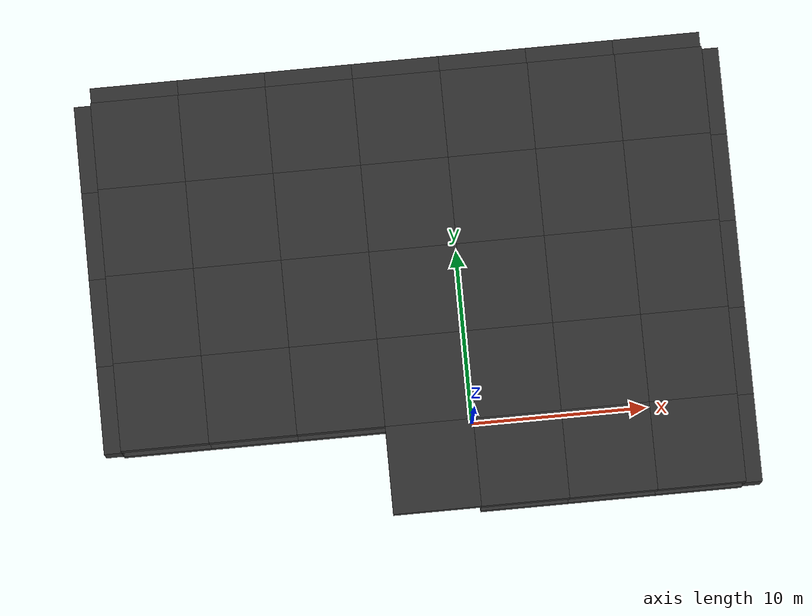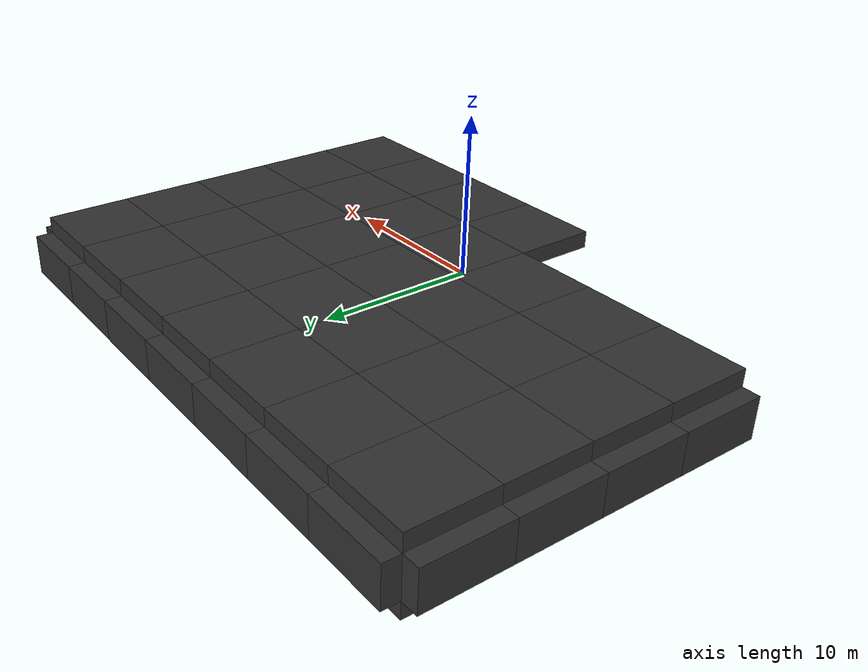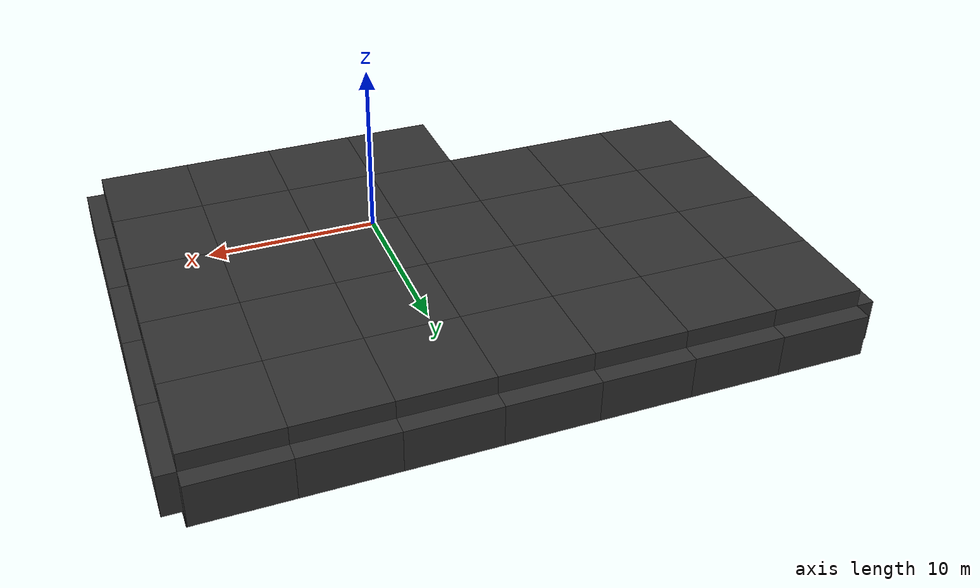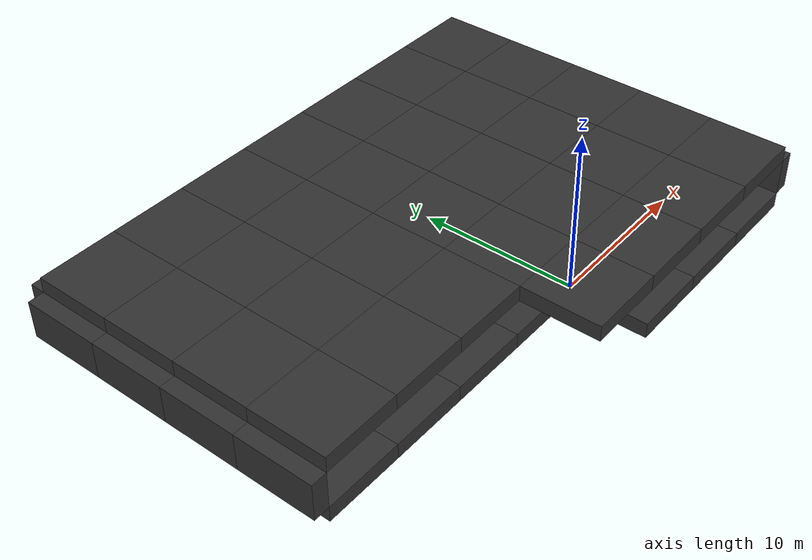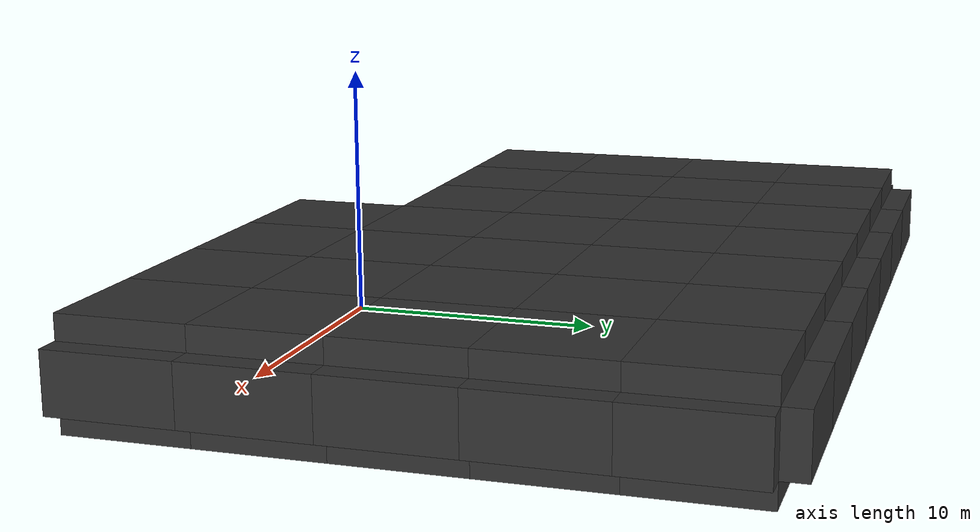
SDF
<sdf version="1.7">
 <world name="RG1">
  <model name="floor_6">
   <static>true</static>
   <pose>-17.5 2.5 -0.5 0.0 0.0 0.0</pose>
   <link name="floor_6-base-link">
    <visual name="floor_6-visual">
     <geometry><box><size>5 5 1.0</size></box></geometry>
     <material><diffuse>0.2 0.2 0.2 1</diffuse><specular>0.1 0.1 0.1 1</specular></material>
    </visual>
    <collision name="floor_6-collision"><geometry><box><size>5 5 1.0</size></box></geometry></collision>
   </link>
  </model>
  <model name="ceiling_6">
   <static>true</static>
   <pose>-17.5 2.5 2.9 0.0 0.0 0.0</pose>
   <link name="ceiling_6-base-link">
    <visual name="ceiling_6-visual">
     <geometry><box><size>5 5 1.0</size></box></geometry>
     <material><diffuse>0.2 0.2 0.2 1</diffuse><specular>0.1 0.1 0.1 1</specular></material>
    </visual>
    <collision name="ceiling_6-collision"><geometry><box><size>5 5 1.0</size></box></geometry></collision>
    <light type="point" name="ceiling_6-light">
     <pose>0 0 -1 0 0 0</pose>
     <cast_shadows>false</cast_shadows>
     <diffuse>0.8 0.8 0.8 1</diffuse>
     <attenuation>
      <range>10</range>
      <constant>0.8</constant>
      <linear>0.05</linear>
      <quadratic>0.01</quadratic>
     </attenuation>
    </light>
   </link>
  </model>
  <model name="wall_7">
   <static>true</static>
   <pose>-20.5 2.5 1.2 0.0 0.0 1.570796326795</pose>
   <link name="wall_7-base-link">
    <visual name="wall_7-visual">
     <geometry><box><size>5 1 2.4</size></box></geometry>
     <material><diffuse>0.2 0.2 0.2 1</diffuse><specular>0.1 0.1 0.1 1</specular></material>
    </visual>
    <collision name="wall_7-collision"><geometry><box><size>5 1 2.4</size></box></geometry></collision>
   </link>
  </model>
  <model name="floor_7">
   <static>true</static>
   <pose>-17.5 7.5 -0.5 0.0 0.0 0.0</pose>
   <link name="floor_7-base-link">
    <visual name="floor_7-visual">
     <geometry><box><size>5 5 1.0</size></box></geometry>
     <material><diffuse>0.2 0.2 0.2 1</diffuse><specular>0.1 0.1 0.1 1</specular></material>
    </visual>
    <collision name="floor_7-collision"><geometry><box><size>5 5 1.0</size></box></geometry></collision>
   </link>
  </model>
  <model name="ceiling_7">
   <static>true</static>
   <pose>-17.5 7.5 2.9 0.0 0.0 0.0</pose>
   <link name="ceiling_7-base-link">
    <visual name="ceiling_7-visual">
     <geometry><box><size>5 5 1.0</size></box></geometry>
     <material><diffuse>0.2 0.2 0.2 1</diffuse><specular>0.1 0.1 0.1 1</specular></material>
    </visual>
    <collision name="ceiling_7-collision"><geometry><box><size>5 5 1.0</size></box></geometry></collision>
    <light type="point" name="ceiling_7-light">
     <pose>0 0 -1 0 0 0</pose>
     <cast_shadows>false</cast_shadows>
     <diffuse>0.8 0.8 0.8 1</diffuse>
     <attenuation>
      <range>10</range>
      <constant>0.8</constant>
      <linear>0.05</linear>
      <quadratic>0.01</quadratic>
     </attenuation>
    </light>
   </link>
  </model>
  <model name="wall_8">
   <static>true</static>
   <pose>-20.5 7.5 1.2 0.0 0.0 1.570796326795</pose>
   <link name="wall_8-base-link">
    <visual name="wall_8-visual">
     <geometry><box><size>5 1 2.4</size></box></geometry>
     <material><diffuse>0.2 0.2 0.2 1</diffuse><specular>0.1 0.1 0.1 1</specular></material>
    </visual>
    <collision name="wall_8-collision"><geometry><box><size>5 1 2.4</size></box></geometry></collision>
   </link>
  </model>
  <model name="floor_8">
   <static>true</static>
   <pose>-17.5 12.5 -0.5 0.0 0.0 0.0</pose>
   <link name="floor_8-base-link">
    <visual name="floor_8-visual">
     <geometry><box><size>5 5 1.0</size></box></geometry>
     <material><diffuse>0.2 0.2 0.2 1</diffuse><specular>0.1 0.1 0.1 1</specular></material>
    </visual>
    <collision name="floor_8-collision"><geometry><box><size>5 5 1.0</size></box></geometry></collision>
   </link>
  </model>
  <model name="ceiling_8">
   <static>true</static>
   <pose>-17.5 12.5 2.9 0.0 0.0 0.0</pose>
   <link name="ceiling_8-base-link">
    <visual name="ceiling_8-visual">
     <geometry><box><size>5 5 1.0</size></box></geometry>
     <material><diffuse>0.2 0.2 0.2 1</diffuse><specular>0.1 0.1 0.1 1</specular></material>
    </visual>
    <collision name="ceiling_8-collision"><geometry><box><size>5 5 1.0</size></box></geometry></collision>
    <light type="point" name="ceiling_8-light">
     <pose>0 0 -1 0 0 0</pose>
     <cast_shadows>false</cast_shadows>
     <diffuse>0.8 0.8 0.8 1</diffuse>
     <attenuation>
      <range>10</range>
      <constant>0.8</constant>
      <linear>0.05</linear>
      <quadratic>0.01</quadratic>
     </attenuation>
    </light>
   </link>
  </model>
  <model name="wall_9">
   <static>true</static>
   <pose>-20.5 12.5 1.2 0.0 0.0 1.570796326795</pose>
   <link name="wall_9-base-link">
    <visual name="wall_9-visual">
     <geometry><box><size>5 1 2.4</size></box></geometry>
     <material><diffuse>0.2 0.2 0.2 1</diffuse><specular>0.1 0.1 0.1 1</specular></material>
    </visual>
    <collision name="wall_9-collision"><geometry><box><size>5 1 2.4</size></box></geometry></collision>
   </link>
  </model>
  <model name="floor_9">
   <static>true</static>
   <pose>-17.5 17.5 -0.5 0.0 0.0 0.0</pose>
   <link name="floor_9-base-link">
    <visual name="floor_9-visual">
     <geometry><box><size>5 5 1.0</size></box></geometry>
     <material><diffuse>0.2 0.2 0.2 1</diffuse><specular>0.1 0.1 0.1 1</specular></material>
    </visual>
    <collision name="floor_9-collision"><geometry><box><size>5 5 1.0</size></box></geometry></collision>
   </link>
  </model>
  <model name="ceiling_9">
   <static>true</static>
   <pose>-17.5 17.5 2.9 0.0 0.0 0.0</pose>
   <link name="ceiling_9-base-link">
    <visual name="ceiling_9-visual">
     <geometry><box><size>5 5 1.0</size></box></geometry>
     <material><diffuse>0.2 0.2 0.2 1</diffuse><specular>0.1 0.1 0.1 1</specular></material>
    </visual>
    <collision name="ceiling_9-collision"><geometry><box><size>5 5 1.0</size></box></geometry></collision>
    <light type="point" name="ceiling_9-light">
     <pose>0 0 -1 0 0 0</pose>
     <cast_shadows>false</cast_shadows>
     <diffuse>0.8 0.8 0.8 1</diffuse>
     <attenuation>
      <range>10</range>
      <constant>0.8</constant>
      <linear>0.05</linear>
      <quadratic>0.01</quadratic>
     </attenuation>
    </light>
   </link>
  </model>
  <model name="wall_10">
   <static>true</static>
   <pose>-20.5 17.5 1.2 0.0 0.0 1.570796326795</pose>
   <link name="wall_10-base-link">
    <visual name="wall_10-visual">
     <geometry><box><size>5 1 2.4</size></box></geometry>
     <material><diffuse>0.2 0.2 0.2 1</diffuse><specular>0.1 0.1 0.1 1</specular></material>
    </visual>
    <collision name="wall_10-collision"><geometry><box><size>5 1 2.4</size></box></geometry></collision>
   </link>
  </model>
  <model name="wall_11">
   <static>true</static>
   <pose>-17.5 20.5 1.2 0.0 0.0 0.0</pose>
   <link name="wall_11-base-link">
    <visual name="wall_11-visual">
     <geometry><box><size>5 1 2.4</size></box></geometry>
     <material><diffuse>0.2 0.2 0.2 1</diffuse><specular>0.1 0.1 0.1 1</specular></material>
    </visual>
    <collision name="wall_11-collision"><geometry><box><size>5 1 2.4</size></box></geometry></collision>
   </link>
  </model>
  <model name="floor_15">
   <static>true</static>
   <pose>-12.5 2.5 -0.5 0.0 0.0 0.0</pose>
   <link name="floor_15-base-link">
    <visual name="floor_15-visual">
     <geometry><box><size>5 5 1.0</size></box></geometry>
     <material><diffuse>0.2 0.2 0.2 1</diffuse><specular>0.1 0.1 0.1 1</specular></material>
    </visual>
    <collision name="floor_15-collision"><geometry><box><size>5 5 1.0</size></box></geometry></collision>
   </link>
  </model>
  <model name="ceiling_15">
   <static>true</static>
   <pose>-12.5 2.5 2.9 0.0 0.0 0.0</pose>
   <link name="ceiling_15-base-link">
    <visual name="ceiling_15-visual">
     <geometry><box><size>5 5 1.0</size></box></geometry>
     <material><diffuse>0.2 0.2 0.2 1</diffuse><specular>0.1 0.1 0.1 1</specular></material>
    </visual>
    <collision name="ceiling_15-collision"><geometry><box><size>5 5 1.0</size></box></geometry></collision>
    <light type="point" name="ceiling_15-light">
     <pose>0 0 -1 0 0 0</pose>
     <cast_shadows>false</cast_shadows>
     <diffuse>0.8 0.8 0.8 1</diffuse>
     <attenuation>
      <range>10</range>
      <constant>0.8</constant>
      <linear>0.05</linear>
      <quadratic>0.01</quadratic>
     </attenuation>
    </light>
   </link>
  </model>
  <model name="floor_16">
   <static>true</static>
   <pose>-12.5 7.5 -0.5 0.0 0.0 0.0</pose>
   <link name="floor_16-base-link">
    <visual name="floor_16-visual">
     <geometry><box><size>5 5 1.0</size></box></geometry>
     <material><diffuse>0.2 0.2 0.2 1</diffuse><specular>0.1 0.1 0.1 1</specular></material>
    </visual>
    <collision name="floor_16-collision"><geometry><box><size>5 5 1.0</size></box></geometry></collision>
   </link>
  </model>
  <model name="ceiling_16">
   <static>true</static>
   <pose>-12.5 7.5 2.9 0.0 0.0 0.0</pose>
   <link name="ceiling_16-base-link">
    <visual name="ceiling_16-visual">
     <geometry><box><size>5 5 1.0</size></box></geometry>
     <material><diffuse>0.2 0.2 0.2 1</diffuse><specular>0.1 0.1 0.1 1</specular></material>
    </visual>
    <collision name="ceiling_16-collision"><geometry><box><size>5 5 1.0</size></box></geometry></collision>
    <light type="point" name="ceiling_16-light">
     <pose>0 0 -1 0 0 0</pose>
     <cast_shadows>false</cast_shadows>
     <diffuse>0.8 0.8 0.8 1</diffuse>
     <attenuation>
      <range>10</range>
      <constant>0.8</constant>
      <linear>0.05</linear>
      <quadratic>0.01</quadratic>
     </attenuation>
    </light>
   </link>
  </model>
  <model name="floor_17">
   <static>true</static>
   <pose>-12.5 12.5 -0.5 0.0 0.0 0.0</pose>
   <link name="floor_17-base-link">
    <visual name="floor_17-visual">
     <geometry><box><size>5 5 1.0</size></box></geometry>
     <material><diffuse>0.2 0.2 0.2 1</diffuse><specular>0.1 0.1 0.1 1</specular></material>
    </visual>
    <collision name="floor_17-collision"><geometry><box><size>5 5 1.0</size></box></geometry></collision>
   </link>
  </model>
  <model name="ceiling_17">
   <static>true</static>
   <pose>-12.5 12.5 2.9 0.0 0.0 0.0</pose>
   <link name="ceiling_17-base-link">
    <visual name="ceiling_17-visual">
     <geometry><box><size>5 5 1.0</size></box></geometry>
     <material><diffuse>0.2 0.2 0.2 1</diffuse><specular>0.1 0.1 0.1 1</specular></material>
    </visual>
    <collision name="ceiling_17-collision"><geometry><box><size>5 5 1.0</size></box></geometry></collision>
    <light type="point" name="ceiling_17-light">
     <pose>0 0 -1 0 0 0</pose>
     <cast_shadows>false</cast_shadows>
     <diffuse>0.8 0.8 0.8 1</diffuse>
     <attenuation>
      <range>10</range>
      <constant>0.8</constant>
      <linear>0.05</linear>
      <quadratic>0.01</quadratic>
     </attenuation>
    </light>
   </link>
  </model>
  <model name="floor_18">
   <static>true</static>
   <pose>-12.5 17.5 -0.5 0.0 0.0 0.0</pose>
   <link name="floor_18-base-link">
    <visual name="floor_18-visual">
     <geometry><box><size>5 5 1.0</size></box></geometry>
     <material><diffuse>0.2 0.2 0.2 1</diffuse><specular>0.1 0.1 0.1 1</specular></material>
    </visual>
    <collision name="floor_18-collision"><geometry><box><size>5 5 1.0</size></box></geometry></collision>
   </link>
  </model>
  <model name="ceiling_18">
   <static>true</static>
   <pose>-12.5 17.5 2.9 0.0 0.0 0.0</pose>
   <link name="ceiling_18-base-link">
    <visual name="ceiling_18-visual">
     <geometry><box><size>5 5 1.0</size></box></geometry>
     <material><diffuse>0.2 0.2 0.2 1</diffuse><specular>0.1 0.1 0.1 1</specular></material>
    </visual>
    <collision name="ceiling_18-collision"><geometry><box><size>5 5 1.0</size></box></geometry></collision>
    <light type="point" name="ceiling_18-light">
     <pose>0 0 -1 0 0 0</pose>
     <cast_shadows>false</cast_shadows>
     <diffuse>0.8 0.8 0.8 1</diffuse>
     <attenuation>
      <range>10</range>
      <constant>0.8</constant>
      <linear>0.05</linear>
      <quadratic>0.01</quadratic>
     </attenuation>
    </light>
   </link>
  </model>
  <model name="wall_13">
   <static>true</static>
   <pose>-12.5 20.5 1.2 0.0 0.0 0.0</pose>
   <link name="wall_13-base-link">
    <visual name="wall_13-visual">
     <geometry><box><size>5 1 2.4</size></box></geometry>
     <material><diffuse>0.2 0.2 0.2 1</diffuse><specular>0.1 0.1 0.1 1</specular></material>
    </visual>
    <collision name="wall_13-collision"><geometry><box><size>5 1 2.4</size></box></geometry></collision>
   </link>
  </model>
  <model name="floor_24">
   <static>true</static>
   <pose>-7.5 2.5 -0.5 0.0 0.0 0.0</pose>
   <link name="floor_24-base-link">
    <visual name="floor_24-visual">
     <geometry><box><size>5 5 1.0</size></box></geometry>
     <material><diffuse>0.2 0.2 0.2 1</diffuse><specular>0.1 0.1 0.1 1</specular></material>
    </visual>
    <collision name="floor_24-collision"><geometry><box><size>5 5 1.0</size></box></geometry></collision>
   </link>
  </model>
  <model name="ceiling_24">
   <static>true</static>
   <pose>-7.5 2.5 2.9 0.0 0.0 0.0</pose>
   <link name="ceiling_24-base-link">
    <visual name="ceiling_24-visual">
     <geometry><box><size>5 5 1.0</size></box></geometry>
     <material><diffuse>0.2 0.2 0.2 1</diffuse><specular>0.1 0.1 0.1 1</specular></material>
    </visual>
    <collision name="ceiling_24-collision"><geometry><box><size>5 5 1.0</size></box></geometry></collision>
    <light type="point" name="ceiling_24-light">
     <pose>0 0 -1 0 0 0</pose>
     <cast_shadows>false</cast_shadows>
     <diffuse>0.8 0.8 0.8 1</diffuse>
     <attenuation>
      <range>10</range>
      <constant>0.8</constant>
      <linear>0.05</linear>
      <quadratic>0.01</quadratic>
     </attenuation>
    </light>
   </link>
  </model>
  <model name="floor_25">
   <static>true</static>
   <pose>-7.5 7.5 -0.5 0.0 0.0 0.0</pose>
   <link name="floor_25-base-link">
    <visual name="floor_25-visual">
     <geometry><box><size>5 5 1.0</size></box></geometry>
     <material><diffuse>0.2 0.2 0.2 1</diffuse><specular>0.1 0.1 0.1 1</specular></material>
    </visual>
    <collision name="floor_25-collision"><geometry><box><size>5 5 1.0</size></box></geometry></collision>
   </link>
  </model>
  <model name="ceiling_25">
   <static>true</static>
   <pose>-7.5 7.5 2.9 0.0 0.0 0.0</pose>
   <link name="ceiling_25-base-link">
    <visual name="ceiling_25-visual">
     <geometry><box><size>5 5 1.0</size></box></geometry>
     <material><diffuse>0.2 0.2 0.2 1</diffuse><specular>0.1 0.1 0.1 1</specular></material>
    </visual>
    <collision name="ceiling_25-collision"><geometry><box><size>5 5 1.0</size></box></geometry></collision>
    <light type="point" name="ceiling_25-light">
     <pose>0 0 -1 0 0 0</pose>
     <cast_shadows>false</cast_shadows>
     <diffuse>0.8 0.8 0.8 1</diffuse>
     <attenuation>
      <range>10</range>
      <constant>0.8</constant>
      <linear>0.05</linear>
      <quadratic>0.01</quadratic>
     </attenuation>
    </light>
   </link>
  </model>
  <model name="floor_26">
   <static>true</static>
   <pose>-7.5 12.5 -0.5 0.0 0.0 0.0</pose>
   <link name="floor_26-base-link">
    <visual name="floor_26-visual">
     <geometry><box><size>5 5 1.0</size></box></geometry>
     <material><diffuse>0.2 0.2 0.2 1</diffuse><specular>0.1 0.1 0.1 1</specular></material>
    </visual>
    <collision name="floor_26-collision"><geometry><box><size>5 5 1.0</size></box></geometry></collision>
   </link>
  </model>
  <model name="ceiling_26">
   <static>true</static>
   <pose>-7.5 12.5 2.9 0.0 0.0 0.0</pose>
   <link name="ceiling_26-base-link">
    <visual name="ceiling_26-visual">
     <geometry><box><size>5 5 1.0</size></box></geometry>
     <material><diffuse>0.2 0.2 0.2 1</diffuse><specular>0.1 0.1 0.1 1</specular></material>
    </visual>
    <collision name="ceiling_26-collision"><geometry><box><size>5 5 1.0</size></box></geometry></collision>
    <light type="point" name="ceiling_26-light">
     <pose>0 0 -1 0 0 0</pose>
     <cast_shadows>false</cast_shadows>
     <diffuse>0.8 0.8 0.8 1</diffuse>
     <attenuation>
      <range>10</range>
      <constant>0.8</constant>
      <linear>0.05</linear>
      <quadratic>0.01</quadratic>
     </attenuation>
    </light>
   </link>
  </model>
  <model name="floor_27">
   <static>true</static>
   <pose>-7.5 17.5 -0.5 0.0 0.0 0.0</pose>
   <link name="floor_27-base-link">
    <visual name="floor_27-visual">
     <geometry><box><size>5 5 1.0</size></box></geometry>
     <material><diffuse>0.2 0.2 0.2 1</diffuse><specular>0.1 0.1 0.1 1</specular></material>
    </visual>
    <collision name="floor_27-collision"><geometry><box><size>5 5 1.0</size></box></geometry></collision>
   </link>
  </model>
  <model name="ceiling_27">
   <static>true</static>
   <pose>-7.5 17.5 2.9 0.0 0.0 0.0</pose>
   <link name="ceiling_27-base-link">
    <visual name="ceiling_27-visual">
     <geometry><box><size>5 5 1.0</size></box></geometry>
     <material><diffuse>0.2 0.2 0.2 1</diffuse><specular>0.1 0.1 0.1 1</specular></material>
    </visual>
    <collision name="ceiling_27-collision"><geometry><box><size>5 5 1.0</size></box></geometry></collision>
    <light type="point" name="ceiling_27-light">
     <pose>0 0 -1 0 0 0</pose>
     <cast_shadows>false</cast_shadows>
     <diffuse>0.8 0.8 0.8 1</diffuse>
     <attenuation>
      <range>10</range>
      <constant>0.8</constant>
      <linear>0.05</linear>
      <quadratic>0.01</quadratic>
     </attenuation>
    </light>
   </link>
  </model>
  <model name="wall_15">
   <static>true</static>
   <pose>-7.5 20.5 1.2 0.0 0.0 0.0</pose>
   <link name="wall_15-base-link">
    <visual name="wall_15-visual">
     <geometry><box><size>5 1 2.4</size></box></geometry>
     <material><diffuse>0.2 0.2 0.2 1</diffuse><specular>0.1 0.1 0.1 1</specular></material>
    </visual>
    <collision name="wall_15-collision"><geometry><box><size>5 1 2.4</size></box></geometry></collision>
   </link>
  </model>
  <model name="ceiling_32">
   <static>true</static>
   <pose>-2.5 -2.5 2.9 0.0 0.0 0.0</pose>
   <link name="ceiling_32-base-link">
    <visual name="ceiling_32-visual">
     <geometry><box><size>5 5 1.0</size></box></geometry>
     <material><diffuse>0.2 0.2 0.2 1</diffuse><specular>0.1 0.1 0.1 1</specular></material>
    </visual>
    <collision name="ceiling_32-collision"><geometry><box><size>5 5 1.0</size></box></geometry></collision>
    <light type="point" name="ceiling_32-light">
     <pose>0 0 -1 0 0 0</pose>
     <cast_shadows>false</cast_shadows>
     <diffuse>0.8 0.8 0.8 1</diffuse>
     <attenuation>
      <range>10</range>
      <constant>0.8</constant>
      <linear>0.05</linear>
      <quadratic>0.01</quadratic>
     </attenuation>
    </light>
   </link>
  </model>
  <model name="floor_33">
   <static>true</static>
   <pose>-2.5 2.5 -0.5 0.0 0.0 0.0</pose>
   <link name="floor_33-base-link">
    <visual name="floor_33-visual">
     <geometry><box><size>5 5 1.0</size></box></geometry>
     <material><diffuse>0.2 0.2 0.2 1</diffuse><specular>0.1 0.1 0.1 1</specular></material>
    </visual>
    <collision name="floor_33-collision"><geometry><box><size>5 5 1.0</size></box></geometry></collision>
   </link>
  </model>
  <model name="ceiling_33">
   <static>true</static>
   <pose>-2.5 2.5 2.9 0.0 0.0 0.0</pose>
   <link name="ceiling_33-base-link">
    <visual name="ceiling_33-visual">
     <geometry><box><size>5 5 1.0</size></box></geometry>
     <material><diffuse>0.2 0.2 0.2 1</diffuse><specular>0.1 0.1 0.1 1</specular></material>
    </visual>
    <collision name="ceiling_33-collision"><geometry><box><size>5 5 1.0</size></box></geometry></collision>
    <light type="point" name="ceiling_33-light">
     <pose>0 0 -1 0 0 0</pose>
     <cast_shadows>false</cast_shadows>
     <diffuse>0.8 0.8 0.8 1</diffuse>
     <attenuation>
      <range>10</range>
      <constant>0.8</constant>
      <linear>0.05</linear>
      <quadratic>0.01</quadratic>
     </attenuation>
    </light>
   </link>
  </model>
  <model name="floor_34">
   <static>true</static>
   <pose>-2.5 7.5 -0.5 0.0 0.0 0.0</pose>
   <link name="floor_34-base-link">
    <visual name="floor_34-visual">
     <geometry><box><size>5 5 1.0</size></box></geometry>
     <material><diffuse>0.2 0.2 0.2 1</diffuse><specular>0.1 0.1 0.1 1</specular></material>
    </visual>
    <collision name="floor_34-collision"><geometry><box><size>5 5 1.0</size></box></geometry></collision>
   </link>
  </model>
  <model name="ceiling_34">
   <static>true</static>
   <pose>-2.5 7.5 2.9 0.0 0.0 0.0</pose>
   <link name="ceiling_34-base-link">
    <visual name="ceiling_34-visual">
     <geometry><box><size>5 5 1.0</size></box></geometry>
     <material><diffuse>0.2 0.2 0.2 1</diffuse><specular>0.1 0.1 0.1 1</specular></material>
    </visual>
    <collision name="ceiling_34-collision"><geometry><box><size>5 5 1.0</size></box></geometry></collision>
    <light type="point" name="ceiling_34-light">
     <pose>0 0 -1 0 0 0</pose>
     <cast_shadows>false</cast_shadows>
     <diffuse>0.8 0.8 0.8 1</diffuse>
     <attenuation>
      <range>10</range>
      <constant>0.8</constant>
      <linear>0.05</linear>
      <quadratic>0.01</quadratic>
     </attenuation>
    </light>
   </link>
  </model>
  <model name="floor_35">
   <static>true</static>
   <pose>-2.5 12.5 -0.5 0.0 0.0 0.0</pose>
   <link name="floor_35-base-link">
    <visual name="floor_35-visual">
     <geometry><box><size>5 5 1.0</size></box></geometry>
     <material><diffuse>0.2 0.2 0.2 1</diffuse><specular>0.1 0.1 0.1 1</specular></material>
    </visual>
    <collision name="floor_35-collision"><geometry><box><size>5 5 1.0</size></box></geometry></collision>
   </link>
  </model>
  <model name="ceiling_35">
   <static>true</static>
   <pose>-2.5 12.5 2.9 0.0 0.0 0.0</pose>
   <link name="ceiling_35-base-link">
    <visual name="ceiling_35-visual">
     <geometry><box><size>5 5 1.0</size></box></geometry>
     <material><diffuse>0.2 0.2 0.2 1</diffuse><specular>0.1 0.1 0.1 1</specular></material>
    </visual>
    <collision name="ceiling_35-collision"><geometry><box><size>5 5 1.0</size></box></geometry></collision>
    <light type="point" name="ceiling_35-light">
     <pose>0 0 -1 0 0 0</pose>
     <cast_shadows>false</cast_shadows>
     <diffuse>0.8 0.8 0.8 1</diffuse>
     <attenuation>
      <range>10</range>
      <constant>0.8</constant>
      <linear>0.05</linear>
      <quadratic>0.01</quadratic>
     </attenuation>
    </light>
   </link>
  </model>
  <model name="floor_36">
   <static>true</static>
   <pose>-2.5 17.5 -0.5 0.0 0.0 0.0</pose>
   <link name="floor_36-base-link">
    <visual name="floor_36-visual">
     <geometry><box><size>5 5 1.0</size></box></geometry>
     <material><diffuse>0.2 0.2 0.2 1</diffuse><specular>0.1 0.1 0.1 1</specular></material>
    </visual>
    <collision name="floor_36-collision"><geometry><box><size>5 5 1.0</size></box></geometry></collision>
   </link>
  </model>
  <model name="ceiling_36">
   <static>true</static>
   <pose>-2.5 17.5 2.9 0.0 0.0 0.0</pose>
   <link name="ceiling_36-base-link">
    <visual name="ceiling_36-visual">
     <geometry><box><size>5 5 1.0</size></box></geometry>
     <material><diffuse>0.2 0.2 0.2 1</diffuse><specular>0.1 0.1 0.1 1</specular></material>
    </visual>
    <collision name="ceiling_36-collision"><geometry><box><size>5 5 1.0</size></box></geometry></collision>
    <light type="point" name="ceiling_36-light">
     <pose>0 0 -1 0 0 0</pose>
     <cast_shadows>false</cast_shadows>
     <diffuse>0.8 0.8 0.8 1</diffuse>
     <attenuation>
      <range>10</range>
      <constant>0.8</constant>
      <linear>0.05</linear>
      <quadratic>0.01</quadratic>
     </attenuation>
    </light>
   </link>
  </model>
  <model name="wall_17">
   <static>true</static>
   <pose>-2.5 20.5 1.2 0.0 0.0 0.0</pose>
   <link name="wall_17-base-link">
    <visual name="wall_17-visual">
     <geometry><box><size>5 1 2.4</size></box></geometry>
     <material><diffuse>0.2 0.2 0.2 1</diffuse><specular>0.1 0.1 0.1 1</specular></material>
    </visual>
    <collision name="wall_17-collision"><geometry><box><size>5 1 2.4</size></box></geometry></collision>
   </link>
  </model>
  <model name="floor_41">
   <static>true</static>
   <pose>2.5 -2.5 -0.5 0.0 0.0 0.0</pose>
   <link name="floor_41-base-link">
    <visual name="floor_41-visual">
     <geometry><box><size>5 5 1.0</size></box></geometry>
     <material><diffuse>0.2 0.2 0.2 1</diffuse><specular>0.1 0.1 0.1 1</specular></material>
    </visual>
    <collision name="floor_41-collision"><geometry><box><size>5 5 1.0</size></box></geometry></collision>
   </link>
  </model>
  <model name="ceiling_41">
   <static>true</static>
   <pose>2.5 -2.5 2.9 0.0 0.0 0.0</pose>
   <link name="ceiling_41-base-link">
    <visual name="ceiling_41-visual">
     <geometry><box><size>5 5 1.0</size></box></geometry>
     <material><diffuse>0.2 0.2 0.2 1</diffuse><specular>0.1 0.1 0.1 1</specular></material>
    </visual>
    <collision name="ceiling_41-collision"><geometry><box><size>5 5 1.0</size></box></geometry></collision>
    <light type="point" name="ceiling_41-light">
     <pose>0 0 -1 0 0 0</pose>
     <cast_shadows>false</cast_shadows>
     <diffuse>0.8 0.8 0.8 1</diffuse>
     <attenuation>
      <range>10</range>
      <constant>0.8</constant>
      <linear>0.05</linear>
      <quadratic>0.01</quadratic>
     </attenuation>
    </light>
   </link>
  </model>
  <model name="floor_42">
   <static>true</static>
   <pose>2.5 2.5 -0.5 0.0 0.0 0.0</pose>
   <link name="floor_42-base-link">
    <visual name="floor_42-visual">
     <geometry><box><size>5 5 1.0</size></box></geometry>
     <material><diffuse>0.2 0.2 0.2 1</diffuse><specular>0.1 0.1 0.1 1</specular></material>
    </visual>
    <collision name="floor_42-collision"><geometry><box><size>5 5 1.0</size></box></geometry></collision>
   </link>
  </model>
  <model name="ceiling_42">
   <static>true</static>
   <pose>2.5 2.5 2.9 0.0 0.0 0.0</pose>
   <link name="ceiling_42-base-link">
    <visual name="ceiling_42-visual">
     <geometry><box><size>5 5 1.0</size></box></geometry>
     <material><diffuse>0.2 0.2 0.2 1</diffuse><specular>0.1 0.1 0.1 1</specular></material>
    </visual>
    <collision name="ceiling_42-collision"><geometry><box><size>5 5 1.0</size></box></geometry></collision>
    <light type="point" name="ceiling_42-light">
     <pose>0 0 -1 0 0 0</pose>
     <cast_shadows>false</cast_shadows>
     <diffuse>0.8 0.8 0.8 1</diffuse>
     <attenuation>
      <range>10</range>
      <constant>0.8</constant>
      <linear>0.05</linear>
      <quadratic>0.01</quadratic>
     </attenuation>
    </light>
   </link>
  </model>
  <model name="floor_43">
   <static>true</static>
   <pose>2.5 7.5 -0.5 0.0 0.0 0.0</pose>
   <link name="floor_43-base-link">
    <visual name="floor_43-visual">
     <geometry><box><size>5 5 1.0</size></box></geometry>
     <material><diffuse>0.2 0.2 0.2 1</diffuse><specular>0.1 0.1 0.1 1</specular></material>
    </visual>
    <collision name="floor_43-collision"><geometry><box><size>5 5 1.0</size></box></geometry></collision>
   </link>
  </model>
  <model name="ceiling_43">
   <static>true</static>
   <pose>2.5 7.5 2.9 0.0 0.0 0.0</pose>
   <link name="ceiling_43-base-link">
    <visual name="ceiling_43-visual">
     <geometry><box><size>5 5 1.0</size></box></geometry>
     <material><diffuse>0.2 0.2 0.2 1</diffuse><specular>0.1 0.1 0.1 1</specular></material>
    </visual>
    <collision name="ceiling_43-collision"><geometry><box><size>5 5 1.0</size></box></geometry></collision>
    <light type="point" name="ceiling_43-light">
     <pose>0 0 -1 0 0 0</pose>
     <cast_shadows>false</cast_shadows>
     <diffuse>0.8 0.8 0.8 1</diffuse>
     <attenuation>
      <range>10</range>
      <constant>0.8</constant>
      <linear>0.05</linear>
      <quadratic>0.01</quadratic>
     </attenuation>
    </light>
   </link>
  </model>
  <model name="floor_44">
   <static>true</static>
   <pose>2.5 12.5 -0.5 0.0 0.0 0.0</pose>
   <link name="floor_44-base-link">
    <visual name="floor_44-visual">
     <geometry><box><size>5 5 1.0</size></box></geometry>
     <material><diffuse>0.2 0.2 0.2 1</diffuse><specular>0.1 0.1 0.1 1</specular></material>
    </visual>
    <collision name="floor_44-collision"><geometry><box><size>5 5 1.0</size></box></geometry></collision>
   </link>
  </model>
  <model name="ceiling_44">
   <static>true</static>
   <pose>2.5 12.5 2.9 0.0 0.0 0.0</pose>
   <link name="ceiling_44-base-link">
    <visual name="ceiling_44-visual">
     <geometry><box><size>5 5 1.0</size></box></geometry>
     <material><diffuse>0.2 0.2 0.2 1</diffuse><specular>0.1 0.1 0.1 1</specular></material>
    </visual>
    <collision name="ceiling_44-collision"><geometry><box><size>5 5 1.0</size></box></geometry></collision>
    <light type="point" name="ceiling_44-light">
     <pose>0 0 -1 0 0 0</pose>
     <cast_shadows>false</cast_shadows>
     <diffuse>0.8 0.8 0.8 1</diffuse>
     <attenuation>
      <range>10</range>
      <constant>0.8</constant>
      <linear>0.05</linear>
      <quadratic>0.01</quadratic>
     </attenuation>
    </light>
   </link>
  </model>
  <model name="floor_45">
   <static>true</static>
   <pose>2.5 17.5 -0.5 0.0 0.0 0.0</pose>
   <link name="floor_45-base-link">
    <visual name="floor_45-visual">
     <geometry><box><size>5 5 1.0</size></box></geometry>
     <material><diffuse>0.2 0.2 0.2 1</diffuse><specular>0.1 0.1 0.1 1</specular></material>
    </visual>
    <collision name="floor_45-collision"><geometry><box><size>5 5 1.0</size></box></geometry></collision>
   </link>
  </model>
  <model name="ceiling_45">
   <static>true</static>
   <pose>2.5 17.5 2.9 0.0 0.0 0.0</pose>
   <link name="ceiling_45-base-link">
    <visual name="ceiling_45-visual">
     <geometry><box><size>5 5 1.0</size></box></geometry>
     <material><diffuse>0.2 0.2 0.2 1</diffuse><specular>0.1 0.1 0.1 1</specular></material>
    </visual>
    <collision name="ceiling_45-collision"><geometry><box><size>5 5 1.0</size></box></geometry></collision>
    <light type="point" name="ceiling_45-light">
     <pose>0 0 -1 0 0 0</pose>
     <cast_shadows>false</cast_shadows>
     <diffuse>0.8 0.8 0.8 1</diffuse>
     <attenuation>
      <range>10</range>
      <constant>0.8</constant>
      <linear>0.05</linear>
      <quadratic>0.01</quadratic>
     </attenuation>
    </light>
   </link>
  </model>
  <model name="wall_19">
   <static>true</static>
   <pose>2.5 20.5 1.2 0.0 0.0 0.0</pose>
   <link name="wall_19-base-link">
    <visual name="wall_19-visual">
     <geometry><box><size>5 1 2.4</size></box></geometry>
     <material><diffuse>0.2 0.2 0.2 1</diffuse><specular>0.1 0.1 0.1 1</specular></material>
    </visual>
    <collision name="wall_19-collision"><geometry><box><size>5 1 2.4</size></box></geometry></collision>
   </link>
  </model>
  <model name="floor_50">
   <static>true</static>
   <pose>7.5 -2.5 -0.5 0.0 0.0 0.0</pose>
   <link name="floor_50-base-link">
    <visual name="floor_50-visual">
     <geometry><box><size>5 5 1.0</size></box></geometry>
     <material><diffuse>0.2 0.2 0.2 1</diffuse><specular>0.1 0.1 0.1 1</specular></material>
    </visual>
    <collision name="floor_50-collision"><geometry><box><size>5 5 1.0</size></box></geometry></collision>
   </link>
  </model>
  <model name="ceiling_50">
   <static>true</static>
   <pose>7.5 -2.5 2.9 0.0 0.0 0.0</pose>
   <link name="ceiling_50-base-link">
    <visual name="ceiling_50-visual">
     <geometry><box><size>5 5 1.0</size></box></geometry>
     <material><diffuse>0.2 0.2 0.2 1</diffuse><specular>0.1 0.1 0.1 1</specular></material>
    </visual>
    <collision name="ceiling_50-collision"><geometry><box><size>5 5 1.0</size></box></geometry></collision>
    <light type="point" name="ceiling_50-light">
     <pose>0 0 -1 0 0 0</pose>
     <cast_shadows>false</cast_shadows>
     <diffuse>0.8 0.8 0.8 1</diffuse>
     <attenuation>
      <range>10</range>
      <constant>0.8</constant>
      <linear>0.05</linear>
      <quadratic>0.01</quadratic>
     </attenuation>
    </light>
   </link>
  </model>
  <model name="floor_51">
   <static>true</static>
   <pose>7.5 2.5 -0.5 0.0 0.0 0.0</pose>
   <link name="floor_51-base-link">
    <visual name="floor_51-visual">
     <geometry><box><size>5 5 1.0</size></box></geometry>
     <material><diffuse>0.2 0.2 0.2 1</diffuse><specular>0.1 0.1 0.1 1</specular></material>
    </visual>
    <collision name="floor_51-collision"><geometry><box><size>5 5 1.0</size></box></geometry></collision>
   </link>
  </model>
  <model name="ceiling_51">
   <static>true</static>
   <pose>7.5 2.5 2.9 0.0 0.0 0.0</pose>
   <link name="ceiling_51-base-link">
    <visual name="ceiling_51-visual">
     <geometry><box><size>5 5 1.0</size></box></geometry>
     <material><diffuse>0.2 0.2 0.2 1</diffuse><specular>0.1 0.1 0.1 1</specular></material>
    </visual>
    <collision name="ceiling_51-collision"><geometry><box><size>5 5 1.0</size></box></geometry></collision>
    <light type="point" name="ceiling_51-light">
     <pose>0 0 -1 0 0 0</pose>
     <cast_shadows>false</cast_shadows>
     <diffuse>0.8 0.8 0.8 1</diffuse>
     <attenuation>
      <range>10</range>
      <constant>0.8</constant>
      <linear>0.05</linear>
      <quadratic>0.01</quadratic>
     </attenuation>
    </light>
   </link>
  </model>
  <model name="floor_52">
   <static>true</static>
   <pose>7.5 7.5 -0.5 0.0 0.0 0.0</pose>
   <link name="floor_52-base-link">
    <visual name="floor_52-visual">
     <geometry><box><size>5 5 1.0</size></box></geometry>
     <material><diffuse>0.2 0.2 0.2 1</diffuse><specular>0.1 0.1 0.1 1</specular></material>
    </visual>
    <collision name="floor_52-collision"><geometry><box><size>5 5 1.0</size></box></geometry></collision>
   </link>
  </model>
  <model name="ceiling_52">
   <static>true</static>
   <pose>7.5 7.5 2.9 0.0 0.0 0.0</pose>
   <link name="ceiling_52-base-link">
    <visual name="ceiling_52-visual">
     <geometry><box><size>5 5 1.0</size></box></geometry>
     <material><diffuse>0.2 0.2 0.2 1</diffuse><specular>0.1 0.1 0.1 1</specular></material>
    </visual>
    <collision name="ceiling_52-collision"><geometry><box><size>5 5 1.0</size></box></geometry></collision>
    <light type="point" name="ceiling_52-light">
     <pose>0 0 -1 0 0 0</pose>
     <cast_shadows>false</cast_shadows>
     <diffuse>0.8 0.8 0.8 1</diffuse>
     <attenuation>
      <range>10</range>
      <constant>0.8</constant>
      <linear>0.05</linear>
      <quadratic>0.01</quadratic>
     </attenuation>
    </light>
   </link>
  </model>
  <model name="floor_53">
   <static>true</static>
   <pose>7.5 12.5 -0.5 0.0 0.0 0.0</pose>
   <link name="floor_53-base-link">
    <visual name="floor_53-visual">
     <geometry><box><size>5 5 1.0</size></box></geometry>
     <material><diffuse>0.2 0.2 0.2 1</diffuse><specular>0.1 0.1 0.1 1</specular></material>
    </visual>
    <collision name="floor_53-collision"><geometry><box><size>5 5 1.0</size></box></geometry></collision>
   </link>
  </model>
  <model name="ceiling_53">
   <static>true</static>
   <pose>7.5 12.5 2.9 0.0 0.0 0.0</pose>
   <link name="ceiling_53-base-link">
    <visual name="ceiling_53-visual">
     <geometry><box><size>5 5 1.0</size></box></geometry>
     <material><diffuse>0.2 0.2 0.2 1</diffuse><specular>0.1 0.1 0.1 1</specular></material>
    </visual>
    <collision name="ceiling_53-collision"><geometry><box><size>5 5 1.0</size></box></geometry></collision>
    <light type="point" name="ceiling_53-light">
     <pose>0 0 -1 0 0 0</pose>
     <cast_shadows>false</cast_shadows>
     <diffuse>0.8 0.8 0.8 1</diffuse>
     <attenuation>
      <range>10</range>
      <constant>0.8</constant>
      <linear>0.05</linear>
      <quadratic>0.01</quadratic>
     </attenuation>
    </light>
   </link>
  </model>
  <model name="floor_54">
   <static>true</static>
   <pose>7.5 17.5 -0.5 0.0 0.0 0.0</pose>
   <link name="floor_54-base-link">
    <visual name="floor_54-visual">
     <geometry><box><size>5 5 1.0</size></box></geometry>
     <material><diffuse>0.2 0.2 0.2 1</diffuse><specular>0.1 0.1 0.1 1</specular></material>
    </visual>
    <collision name="floor_54-collision"><geometry><box><size>5 5 1.0</size></box></geometry></collision>
   </link>
  </model>
  <model name="ceiling_54">
   <static>true</static>
   <pose>7.5 17.5 2.9 0.0 0.0 0.0</pose>
   <link name="ceiling_54-base-link">
    <visual name="ceiling_54-visual">
     <geometry><box><size>5 5 1.0</size></box></geometry>
     <material><diffuse>0.2 0.2 0.2 1</diffuse><specular>0.1 0.1 0.1 1</specular></material>
    </visual>
    <collision name="ceiling_54-collision"><geometry><box><size>5 5 1.0</size></box></geometry></collision>
    <light type="point" name="ceiling_54-light">
     <pose>0 0 -1 0 0 0</pose>
     <cast_shadows>false</cast_shadows>
     <diffuse>0.8 0.8 0.8 1</diffuse>
     <attenuation>
      <range>10</range>
      <constant>0.8</constant>
      <linear>0.05</linear>
      <quadratic>0.01</quadratic>
     </attenuation>
    </light>
   </link>
  </model>
  <model name="wall_21">
   <static>true</static>
   <pose>7.5 20.5 1.2 0.0 0.0 0.0</pose>
   <link name="wall_21-base-link">
    <visual name="wall_21-visual">
     <geometry><box><size>5 1 2.4</size></box></geometry>
     <material><diffuse>0.2 0.2 0.2 1</diffuse><specular>0.1 0.1 0.1 1</specular></material>
    </visual>
    <collision name="wall_21-collision"><geometry><box><size>5 1 2.4</size></box></geometry></collision>
   </link>
  </model>
  <model name="floor_59">
   <static>true</static>
   <pose>12.5 -2.5 -0.5 0.0 0.0 0.0</pose>
   <link name="floor_59-base-link">
    <visual name="floor_59-visual">
     <geometry><box><size>5 5 1.0</size></box></geometry>
     <material><diffuse>0.2 0.2 0.2 1</diffuse><specular>0.1 0.1 0.1 1</specular></material>
    </visual>
    <collision name="floor_59-collision"><geometry><box><size>5 5 1.0</size></box></geometry></collision>
   </link>
  </model>
  <model name="ceiling_59">
   <static>true</static>
   <pose>12.5 -2.5 2.9 0.0 0.0 0.0</pose>
   <link name="ceiling_59-base-link">
    <visual name="ceiling_59-visual">
     <geometry><box><size>5 5 1.0</size></box></geometry>
     <material><diffuse>0.2 0.2 0.2 1</diffuse><specular>0.1 0.1 0.1 1</specular></material>
    </visual>
    <collision name="ceiling_59-collision"><geometry><box><size>5 5 1.0</size></box></geometry></collision>
    <light type="point" name="ceiling_59-light">
     <pose>0 0 -1 0 0 0</pose>
     <cast_shadows>false</cast_shadows>
     <diffuse>0.8 0.8 0.8 1</diffuse>
     <attenuation>
      <range>10</range>
      <constant>0.8</constant>
      <linear>0.05</linear>
      <quadratic>0.01</quadratic>
     </attenuation>
    </light>
   </link>
  </model>
  <model name="wall_27">
   <static>true</static>
   <pose>15.5 -2.5 1.2 0.0 0.0 1.570796326795</pose>
   <link name="wall_27-base-link">
    <visual name="wall_27-visual">
     <geometry><box><size>5 1 2.4</size></box></geometry>
     <material><diffuse>0.2 0.2 0.2 1</diffuse><specular>0.1 0.1 0.1 1</specular></material>
    </visual>
    <collision name="wall_27-collision"><geometry><box><size>5 1 2.4</size></box></geometry></collision>
   </link>
  </model>
  <model name="floor_60">
   <static>true</static>
   <pose>12.5 2.5 -0.5 0.0 0.0 0.0</pose>
   <link name="floor_60-base-link">
    <visual name="floor_60-visual">
     <geometry><box><size>5 5 1.0</size></box></geometry>
     <material><diffuse>0.2 0.2 0.2 1</diffuse><specular>0.1 0.1 0.1 1</specular></material>
    </visual>
    <collision name="floor_60-collision"><geometry><box><size>5 5 1.0</size></box></geometry></collision>
   </link>
  </model>
  <model name="ceiling_60">
   <static>true</static>
   <pose>12.5 2.5 2.9 0.0 0.0 0.0</pose>
   <link name="ceiling_60-base-link">
    <visual name="ceiling_60-visual">
     <geometry><box><size>5 5 1.0</size></box></geometry>
     <material><diffuse>0.2 0.2 0.2 1</diffuse><specular>0.1 0.1 0.1 1</specular></material>
    </visual>
    <collision name="ceiling_60-collision"><geometry><box><size>5 5 1.0</size></box></geometry></collision>
    <light type="point" name="ceiling_60-light">
     <pose>0 0 -1 0 0 0</pose>
     <cast_shadows>false</cast_shadows>
     <diffuse>0.8 0.8 0.8 1</diffuse>
     <attenuation>
      <range>10</range>
      <constant>0.8</constant>
      <linear>0.05</linear>
      <quadratic>0.01</quadratic>
     </attenuation>
    </light>
   </link>
  </model>
  <model name="wall_28">
   <static>true</static>
   <pose>15.5 2.5 1.2 0.0 0.0 1.570796326795</pose>
   <link name="wall_28-base-link">
    <visual name="wall_28-visual">
     <geometry><box><size>5 1 2.4</size></box></geometry>
     <material><diffuse>0.2 0.2 0.2 1</diffuse><specular>0.1 0.1 0.1 1</specular></material>
    </visual>
    <collision name="wall_28-collision"><geometry><box><size>5 1 2.4</size></box></geometry></collision>
   </link>
  </model>
  <model name="floor_61">
   <static>true</static>
   <pose>12.5 7.5 -0.5 0.0 0.0 0.0</pose>
   <link name="floor_61-base-link">
    <visual name="floor_61-visual">
     <geometry><box><size>5 5 1.0</size></box></geometry>
     <material><diffuse>0.2 0.2 0.2 1</diffuse><specular>0.1 0.1 0.1 1</specular></material>
    </visual>
    <collision name="floor_61-collision"><geometry><box><size>5 5 1.0</size></box></geometry></collision>
   </link>
  </model>
  <model name="ceiling_61">
   <static>true</static>
   <pose>12.5 7.5 2.9 0.0 0.0 0.0</pose>
   <link name="ceiling_61-base-link">
    <visual name="ceiling_61-visual">
     <geometry><box><size>5 5 1.0</size></box></geometry>
     <material><diffuse>0.2 0.2 0.2 1</diffuse><specular>0.1 0.1 0.1 1</specular></material>
    </visual>
    <collision name="ceiling_61-collision"><geometry><box><size>5 5 1.0</size></box></geometry></collision>
    <light type="point" name="ceiling_61-light">
     <pose>0 0 -1 0 0 0</pose>
     <cast_shadows>false</cast_shadows>
     <diffuse>0.8 0.8 0.8 1</diffuse>
     <attenuation>
      <range>10</range>
      <constant>0.8</constant>
      <linear>0.05</linear>
      <quadratic>0.01</quadratic>
     </attenuation>
    </light>
   </link>
  </model>
  <model name="wall_29">
   <static>true</static>
   <pose>15.5 7.5 1.2 0.0 0.0 1.570796326795</pose>
   <link name="wall_29-base-link">
    <visual name="wall_29-visual">
     <geometry><box><size>5 1 2.4</size></box></geometry>
     <material><diffuse>0.2 0.2 0.2 1</diffuse><specular>0.1 0.1 0.1 1</specular></material>
    </visual>
    <collision name="wall_29-collision"><geometry><box><size>5 1 2.4</size></box></geometry></collision>
   </link>
  </model>
  <model name="floor_62">
   <static>true</static>
   <pose>12.5 12.5 -0.5 0.0 0.0 0.0</pose>
   <link name="floor_62-base-link">
    <visual name="floor_62-visual">
     <geometry><box><size>5 5 1.0</size></box></geometry>
     <material><diffuse>0.2 0.2 0.2 1</diffuse><specular>0.1 0.1 0.1 1</specular></material>
    </visual>
    <collision name="floor_62-collision"><geometry><box><size>5 5 1.0</size></box></geometry></collision>
   </link>
  </model>
  <model name="ceiling_62">
   <static>true</static>
   <pose>12.5 12.5 2.9 0.0 0.0 0.0</pose>
   <link name="ceiling_62-base-link">
    <visual name="ceiling_62-visual">
     <geometry><box><size>5 5 1.0</size></box></geometry>
     <material><diffuse>0.2 0.2 0.2 1</diffuse><specular>0.1 0.1 0.1 1</specular></material>
    </visual>
    <collision name="ceiling_62-collision"><geometry><box><size>5 5 1.0</size></box></geometry></collision>
    <light type="point" name="ceiling_62-light">
     <pose>0 0 -1 0 0 0</pose>
     <cast_shadows>false</cast_shadows>
     <diffuse>0.8 0.8 0.8 1</diffuse>
     <attenuation>
      <range>10</range>
      <constant>0.8</constant>
      <linear>0.05</linear>
      <quadratic>0.01</quadratic>
     </attenuation>
    </light>
   </link>
  </model>
  <model name="wall_30">
   <static>true</static>
   <pose>15.5 12.5 1.2 0.0 0.0 1.570796326795</pose>
   <link name="wall_30-base-link">
    <visual name="wall_30-visual">
     <geometry><box><size>5 1 2.4</size></box></geometry>
     <material><diffuse>0.2 0.2 0.2 1</diffuse><specular>0.1 0.1 0.1 1</specular></material>
    </visual>
    <collision name="wall_30-collision"><geometry><box><size>5 1 2.4</size></box></geometry></collision>
   </link>
  </model>
  <model name="floor_63">
   <static>true</static>
   <pose>12.5 17.5 -0.5 0.0 0.0 0.0</pose>
   <link name="floor_63-base-link">
    <visual name="floor_63-visual">
     <geometry><box><size>5 5 1.0</size></box></geometry>
     <material><diffuse>0.2 0.2 0.2 1</diffuse><specular>0.1 0.1 0.1 1</specular></material>
    </visual>
    <collision name="floor_63-collision"><geometry><box><size>5 5 1.0</size></box></geometry></collision>
   </link>
  </model>
  <model name="ceiling_63">
   <static>true</static>
   <pose>12.5 17.5 2.9 0.0 0.0 0.0</pose>
   <link name="ceiling_63-base-link">
    <visual name="ceiling_63-visual">
     <geometry><box><size>5 5 1.0</size></box></geometry>
     <material><diffuse>0.2 0.2 0.2 1</diffuse><specular>0.1 0.1 0.1 1</specular></material>
    </visual>
    <collision name="ceiling_63-collision"><geometry><box><size>5 5 1.0</size></box></geometry></collision>
    <light type="point" name="ceiling_63-light">
     <pose>0 0 -1 0 0 0</pose>
     <cast_shadows>false</cast_shadows>
     <diffuse>0.8 0.8 0.8 1</diffuse>
     <attenuation>
      <range>10</range>
      <constant>0.8</constant>
      <linear>0.05</linear>
      <quadratic>0.01</quadratic>
     </attenuation>
    </light>
   </link>
  </model>
  <model name="wall_31">
   <static>true</static>
   <pose>15.5 17.5 1.2 0.0 0.0 1.570796326795</pose>
   <link name="wall_31-base-link">
    <visual name="wall_31-visual">
     <geometry><box><size>5 1 2.4</size></box></geometry>
     <material><diffuse>0.2 0.2 0.2 1</diffuse><specular>0.1 0.1 0.1 1</specular></material>
    </visual>
    <collision name="wall_31-collision"><geometry><box><size>5 1 2.4</size></box></geometry></collision>
   </link>
  </model>
  <model name="wall_32">
   <static>true</static>
   <pose>12.5 20.5 1.2 0.0 0.0 0.0</pose>
   <link name="wall_32-base-link">
    <visual name="wall_32-visual">
     <geometry><box><size>5 1 2.4</size></box></geometry>
     <material><diffuse>0.2 0.2 0.2 1</diffuse><specular>0.1 0.1 0.1 1</specular></material>
    </visual>
    <collision name="wall_32-collision"><geometry><box><size>5 1 2.4</size></box></geometry></collision>
   </link>
  </model>
  <model name="box_1">
   <static>true</static>
   <pose>12.5 2.5 0 0.0 0.0 0.0</pose>
   <link name="box_1-base-link">
    <visual name="box_1-visual">
     <geometry><box><size>6.0 6.0 0.0</size></box></geometry>
     <material><diffuse>0.2 0.2 0.2 1</diffuse><specular>0.1 0.1 0.1 1</specular></material>
    </visual>
    <collision name="box_1-collision"><geometry><box><size>6.0 6.0 0.0</size></box></geometry></collision>
   </link>
  </model>
 </world>
</sdf>
